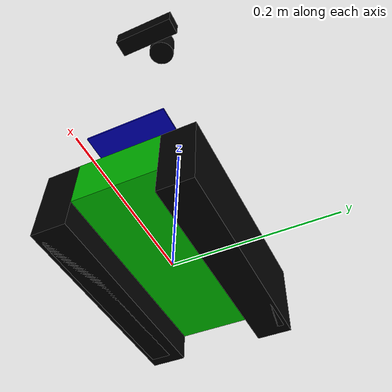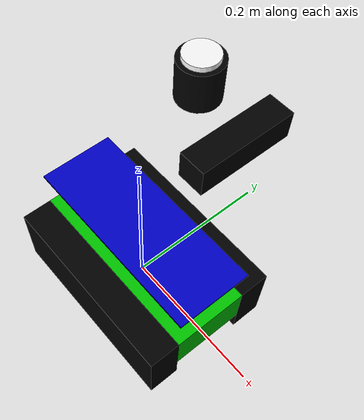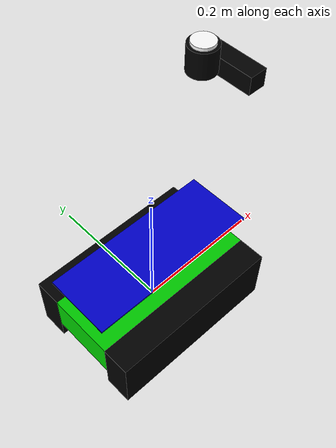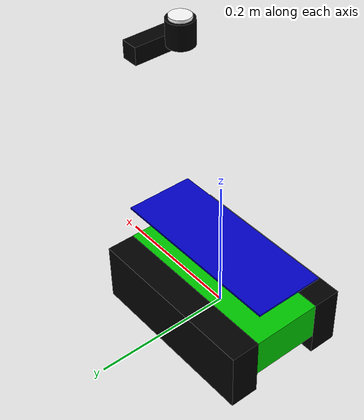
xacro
<?xml version="1.0"?>
<robot xmlns:xacro="http://www.ros.org/wiki/xacro" name="tractor">

  <!-- Properties -->
  <xacro:property name="PI" value="3.14159"/>
  <!-- Robot dimensions based on actual measurements -->
  <!-- Main body: 102mm wide × 266.7mm long × 90mm height -->
  <!-- Treads: 42mm wide each, same length and height as body -->
  <xacro:property name="base_length" value="0.2667"/>  <!-- 266.7mm -->
  <xacro:property name="base_width" value="0.102"/>   <!-- 102mm main body width -->
  <xacro:property name="base_height" value="0.058"/>  <!-- 58mm -->
  <xacro:property name="track_width" value="0.042"/>   <!-- 42mm tread width -->
  <xacro:property name="track_length" value="0.2667"/> <!-- Same as body length -->
  <xacro:property name="track_height" value="0.090"/>  <!-- Same as body height -->
  <xacro:property name="wheel_radius" value="0.0485"/>  <!-- Half of track height - Updated to 48.5mm -->
  <xacro:property name="wheel_separation" value="0.144"/> <!-- 102mm + 42mm = center to center -->

  <!-- Platform properties -->
  <xacro:property name="platform_height" value="0.0025"/> <!-- 2.5mm -->
  <xacro:property name="platform_offset_z" value="0.05"/>  <!-- 50mm -->

  <xacro:property name="camera_pitch" value="0.0"/>

  <!-- Materials -->
  <material name="red">
    <color rgba="0.8 0.0 0.0 1.0"/>
  </material>

  <material name="green">
    <color rgba="0.0 0.8 0.0 1.0"/>
  </material>

  <material name="blue">
    <color rgba="0.0 0.0 0.8 1.0"/>
  </material>

  <material name="black">
    <color rgba="0.0 0.0 0.0 1.0"/>
  </material>

  <material name="white">
    <color rgba="1.0 1.0 1.0 1.0"/>
  </material>

  <!-- Root Link (dummy link to fix KDL warning) -->
  <link name="base_footprint">
    <!-- No inertia, visual, or collision for dummy link -->
  </link>

  <!-- Base Link (main chassis) -->
  <link name="base_link">
    <visual>
      <origin xyz="0 0 0" rpy="0 0 0"/>
      <geometry>
        <box size="${base_length} ${base_width} ${base_height}"/>
      </geometry>
      <material name="green"/>
    </visual>
    <collision>
      <origin xyz="0 0 0" rpy="0 0 0"/>
      <geometry>
        <box size="${base_length} ${base_width} ${base_height}"/>
      </geometry>
    </collision>
    <inertial>
      <origin xyz="0 0 0" rpy="0 0 0"/>
      <mass value="5.0"/>
      <inertia ixx="0.08" ixy="0.0" ixz="0.0" iyy="0.15" iyz="0.0" izz="0.18"/>
    </inertial>
  </link>

  <!-- Left Track -->
  <link name="left_wheel">
    <!-- Main track body (rectangular track shape) -->
    <visual>
      <origin xyz="0 0 0" rpy="0 0 0"/>
      <geometry>
        <box size="${track_length} ${track_width} ${track_height}"/>
      </geometry>
      <material name="black"/>
    </visual>
    <!-- Track tread pattern -->
    <visual>
      <origin xyz="0 0 ${-track_height/2 + 0.005}" rpy="0 0 0"/>
      <geometry>
        <box size="${track_length * 0.9} ${track_width * 0.8} 0.01"/>
      </geometry>
      <material name="black"/>
    </visual>
    <collision>
      <origin xyz="0 0 0" rpy="0 0 0"/>
      <geometry>
        <box size="${track_length} ${track_width} ${track_height}"/>
      </geometry>
    </collision>
    <inertial>
      <origin xyz="0 0 0" rpy="0 0 0"/>
      <mass value="2.0"/>
      <inertia ixx="0.02" ixy="0.0" ixz="0.0" iyy="0.02" iyz="0.0" izz="0.03"/>
    </inertial>
  </link>

  <!-- Right Track -->
  <link name="right_wheel">
    <!-- Main track body (rectangular track shape) -->
    <visual>
      <origin xyz="0 0 0" rpy="0 0 0"/>
      <geometry>
        <box size="${track_length} ${track_width} ${track_height}"/>
      </geometry>
      <material name="black"/>
    </visual>
    <!-- Track tread pattern -->
    <visual>
      <origin xyz="0 0 ${-track_height/2 + 0.005}" rpy="0 0 0"/>
      <geometry>
        <box size="${track_length * 0.9} ${track_width * 0.8} 0.01"/>
      </geometry>
      <material name="black"/>
    </visual>
    <collision>
      <origin xyz="0 0 0" rpy="0 0 0"/>
      <geometry>
        <box size="${track_length} ${track_width} ${track_height}"/>
      </geometry>
    </collision>
    <inertial>
      <origin xyz="0 0 0" rpy="0 0 0"/>
      <mass value="2.0"/>
      <inertia ixx="0.02" ixy="0.0" ixz="0.0" iyy="0.02" iyz="0.0" izz="0.03"/>
    </inertial>
  </link>

  <!-- Camera Link (Intel RealSense) -->
  <link name="camera_link">
    <visual>
      <origin xyz="0 0 0" rpy="0 0 0"/>
      <geometry>
        <box size="0.025 0.09 0.025"/> <!-- Updated dimensions -->
      </geometry>
      <material name="black"/>
    </visual>
    <collision>
      <origin xyz="0 0 0" rpy="0 0 0"/>
      <geometry>
        <box size="0.025 0.09 0.025"/> <!-- Updated dimensions -->
      </geometry>
    </collision>
    <inertial>
      <origin xyz="0 0 0" rpy="0 0 0"/>
      <mass value="0.1"/> <!-- Mass can be re-evaluated if needed -->
      <inertia ixx="0.001" ixy="0.0" ixz="0.0" iyy="0.001" iyz="0.0" izz="0.001"/>
    </inertial>
  </link>

  <!-- HGLRC M100-5883 GPS Module (M10 chip, 21x21x8.02mm, 7.73g) REMOVED -->

  <!-- QMC5883 Compass/Magnetometer (integrated in GPS module) REMOVED -->

  <!-- Mower Deck Link -->

  <!-- Laser Scanner Link REMOVED -->
  <!-- Sprayer tank removed -->

  <!-- Platform Link -->
  <link name="platform_link">
    <visual>
      <origin xyz="0 0 0" rpy="0 0 0"/>
      <geometry>
        <box size="${base_length} ${base_width} ${platform_height}"/>
      </geometry>
      <material name="blue"/>
    </visual>
    <collision>
      <origin xyz="0 0 0" rpy="0 0 0"/>
      <geometry>
        <box size="${base_length} ${base_width} ${platform_height}"/>
      </geometry>
    </collision>
    <inertial>
      <origin xyz="0 0 0" rpy="0 0 0"/>
      <mass value="0.5"/> <!-- Estimated mass -->
      <inertia ixx="0.001" ixy="0.0" ixz="0.0" iyy="0.001" iyz="0.0" izz="0.001"/> <!-- Estimated inertia -->
    </inertial>
  </link>

  <!-- LSM9DS1 IMU Link (mounted upside down on top of base_link, 25mm from front, centered) -->
  <link name="imu_link">
    <visual>
      <origin xyz="0 0 0" rpy="0 0 0"/>
      <geometry>
        <box size="0.003 0.003 0.001"/>
      </geometry>
      <material name="red"/>
    </visual>
    <collision>
      <origin xyz="0 0 0" rpy="0 0 0"/>
      <geometry>
        <box size="0.003 0.003 0.001"/>
      </geometry>
    </collision>
    <inertial>
      <origin xyz="0 0 0" rpy="0 0 0"/>
      <mass value="0.001"/>
      <inertia ixx="0.000001" ixy="0.0" ixz="0.0" iyy="0.000001" iyz="0.0" izz="0.000001"/>
    </inertial>
  </link>

  <!-- LD19 LiDAR Link (mounted flat above RealSense camera) -->
  <link name="laser_link">
    <visual>
      <origin xyz="0 0 0" rpy="0 0 0"/>
      <geometry>
        <cylinder radius="0.019" length="0.035"/>
      </geometry>
      <material name="black"/>
    </visual>
    <visual>
      <origin xyz="0 0 0.0175" rpy="0 0 0"/>
      <geometry>
        <cylinder radius="0.015" length="0.008"/>
      </geometry>
      <material name="white"/>
    </visual>
    <collision>
      <origin xyz="0 0 0" rpy="0 0 0"/>
      <geometry>
        <cylinder radius="0.019" length="0.035"/>
      </geometry>
    </collision>
    <inertial>
      <origin xyz="0 0 0" rpy="0 0 0"/>
      <mass value="0.015"/>
      <inertia ixx="0.000005" ixy="0.0" ixz="0.0" iyy="0.000005" iyz="0.0" izz="0.000003"/>
    </inertial>
  </link>

  <!-- Joints -->

  <!-- Base Footprint to Base Link Joint -->
  <joint name="base_footprint_joint" type="fixed">
    <parent link="base_footprint"/>
    <child link="base_link"/>
    <origin xyz="0 0 ${track_height/2 - 0.016}" rpy="0 0 0"/>
  </joint>

  <!-- Left Track Joint - Fixed for real robot (tank tracks don't rotate) -->
  <joint name="left_wheel_joint" type="fixed">
    <parent link="base_link"/>
    <child link="left_wheel"/>
    <origin xyz="0 ${(base_width + track_width)/2} -0.016" rpy="0 0 0"/>
  </joint>

  <!-- Right Track Joint - Fixed for real robot (tank tracks don't rotate) -->
  <joint name="right_wheel_joint" type="fixed">
    <parent link="base_link"/>
    <child link="right_wheel"/>
    <origin xyz="0 ${-(base_width + track_width)/2} -0.016" rpy="0 0 0"/>
  </joint>

  <!-- Camera Joint (RealSense D435 - front flush with platform front) -->
  <joint name="camera_joint" type="fixed">
    <parent link="platform_link"/>
    <child link="camera_link"/>
    <!-- Camera: 25mm deep, front flush with platform edge at base_length/2 (133.35mm) -->
    <!-- Camera center at: 133.35 - 12.5 = 120.85mm = 0.12085m from base_link center -->
    <!-- Camera mount tower raised 175mm: optical center now 186.5 + 175 = 361.5mm from ground -->
    <!-- Platform at 109.25mm, so offset = 361.5 - 109.25 = 252.25mm -->
    <!-- camera_pitch tilts the lens down; keep matched to the physical mount. -->
    <origin xyz="0.12085 0 0.25225" rpy="0 ${camera_pitch} 0"/>
  </joint>

  <!-- GPS Joint REMOVED -->
  <!-- Compass Joint REMOVED -->

  <!-- Mower Deck Joint -->

  <!-- Laser Joint REMOVED -->
  <!-- Sprayer tank joint removed -->

  <!-- Platform Joint -->
  <joint name="platform_joint" type="fixed">
    <parent link="base_link"/>
    <child link="platform_link"/>
    <origin xyz="0 0 ${base_height/2 + platform_offset_z + platform_height/2}" rpy="0 0 0"/>
  </joint>

  <!-- IMU Joint (upside down, 25mm from front, centered, on top of base_link) -->
  <joint name="imu_joint" type="fixed">
    <parent link="base_link"/>
    <child link="imu_link"/>
    <origin xyz="${base_length/2 - 0.025} 0 ${base_height/2}" rpy="${PI} 0 0"/>
  </joint>

  <!-- Laser Joint (LD19 LiDAR, mounted flat above RealSense, 38mm BEHIND camera front, 200mm from ground, arrow pointing FORWARD) -->
  <joint name="laser_joint" type="fixed">
    <parent link="base_link"/>
    <child link="laser_link"/>
    <!-- LiDAR: 38mm diameter, front is 38mm behind camera front -->
    <!-- Camera front at 133.35mm, LiDAR front at 95.35mm, LiDAR center at 76.35mm = 0.07635m -->
    <!-- Measured: Camera top (199mm) + 3mm gap + 35mm/2 = 219.5mm from ground -->
    <!-- Camera mount tower raised 175mm, LiDAR rides with it: 219.5 + 175 = 394.5mm from ground -->
    <!-- base_link at 29mm, so offset = 394.5 - 29 = 365.5mm = 0.3655m -->
    <!-- Arrow points forward, no rotation needed - counterclockwise scan for correct orientation -->
    <origin xyz="0.07635 0 0.3655" rpy="0 0 0"/>
  </joint>

  <!-- Virtual Visualization Wheels (small, for motion display only) -->
  <!-- These rotate to show movement while tank tracks stay fixed -->

  <!-- Left Virtual Wheel -->

  <!-- Right Virtual Wheel -->

  <!-- Virtual Wheel Joints (continuous for rotation) -->

  <!-- Gazebo-specific elements -->
  <gazebo reference="base_link">
    <material>Gazebo/Green</material>
  </gazebo>

  <gazebo reference="left_wheel">
    <material>Gazebo/Black</material>
    <mu1>0.8</mu1>
    <mu2>0.8</mu2>
    <kp>1000000.0</kp>
    <kd>100.0</kd>
    <minDepth>0.001</minDepth>
    <maxVel>1.0</maxVel>
  </gazebo>

  <gazebo reference="right_wheel">
    <material>Gazebo/Black</material>
    <mu1>0.8</mu1>
    <mu2>0.8</mu2>
    <kp>1000000.0</kp>
    <kd>100.0</kd>
    <minDepth>0.001</minDepth>
    <maxVel>1.0</maxVel>
  </gazebo>

  <gazebo reference="platform_link">
    <material>Gazebo/Blue</material>
  </gazebo>

  <gazebo reference="camera_link">
    <material>Gazebo/Black</material>
  </gazebo>

  <gazebo reference="laser_link">
    <material>Gazebo/Black</material>
  </gazebo>

  <!-- Sprayer tank Gazebo reference removed -->

  <!-- Differential Drive Plugin - Disabled for fixed track joints -->
  <!-- Tank tracks are fixed to chassis - use hiwonder_motor_driver for real robot control -->

  <!-- RealSense Camera Plugin -->
  <gazebo reference="camera_link">
    <sensor type="camera" name="realsense_color">
      <update_rate>30.0</update_rate>
      <camera name="realsense">
        <horizontal_fov>1.3962634</horizontal_fov>
        <image>
          <width>640</width>
          <height>480</height>
          <format>R8G8B8</format>
        </image>
        <clip>
          <near>0.02</near>
          <far>300</far>
        </clip>
        <noise>
          <type>gaussian</type>
          <mean>0.0</mean>
          <stddev>0.007</stddev>
        </noise>
      </camera>
      <plugin name="camera_controller" filename="libgazebo_ros_camera.so">
        <ros>
          <namespace>realsense_435i</namespace>
          <remapping>image_raw:=color/image_raw</remapping>
          <remapping>camera_info:=color/camera_info</remapping>
        </ros>
        <camera_name>realsense</camera_name>
        <frame_name>camera_link</frame_name>
        <hack_baseline>0.07</hack_baseline>
      </plugin>
    </sensor>

    <sensor type="depth" name="realsense_depth">
      <update_rate>30.0</update_rate>
      <camera name="realsense_depth">
        <horizontal_fov>1.3962634</horizontal_fov>
        <image>
          <width>640</width>
          <height>480</height>
        </image>
        <clip>
          <near>0.02</near>
          <far>300</far>
        </clip>
        <noise>
          <type>gaussian</type>
          <mean>0.0</mean>
          <stddev>0.007</stddev>
        </noise>
      </camera>
      <plugin name="depth_camera_controller" filename="libgazebo_ros_camera.so">
        <ros>
          <namespace>realsense_435i</namespace>
          <remapping>image_raw:=depth/image_rect_raw</remapping>
          <remapping>camera_info:=depth/camera_info</remapping>
        </ros>
        <camera_name>realsense_depth</camera_name>
        <frame_name>camera_link</frame_name>
        <hack_baseline>0.07</hack_baseline>
      </plugin>
    </sensor>
  </gazebo>

  <!-- HGLRC M100-5883 GPS Plugin (M10 chip, multi-constellation) REMOVED -->

  <!-- QMC5883 Magnetometer Plugin REMOVED -->

</robot>
